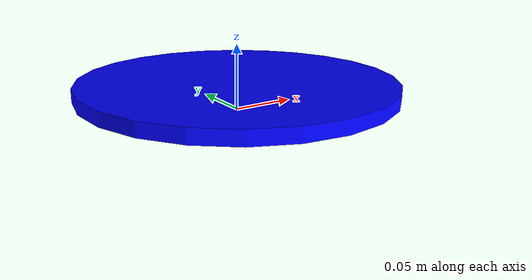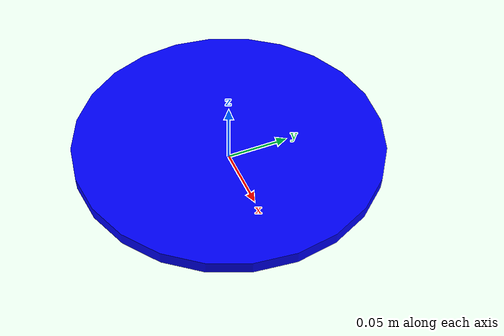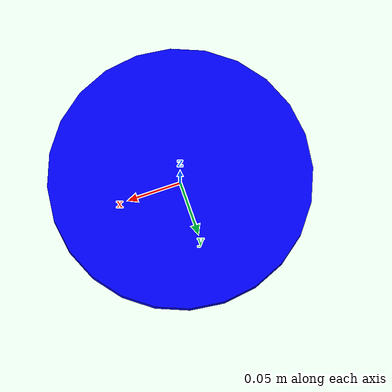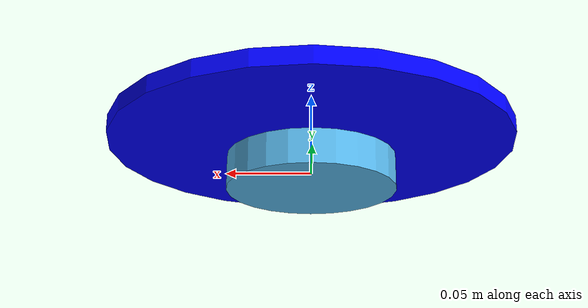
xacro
<?xml version="1.0"?>
<robot xmlns:xacro="http://www.ros.org/wiki/xacro" name="table">

<xacro:property name="rho" value="10.0"/>
<xacro:property name="r" value="0.12"/>
<xacro:property name="h" value="0.01"/>
<xacro:property name="m" value="${rho * pi * r * r * h}"/>
<xacro:property name="I1" value="${m * r * r / 4 + m * h * h / 12}"/>
<xacro:property name="I2" value="${m * r * r / 2}"/>

<gazebo>
    <plugin name="gazebo_ros_control" filename="libgazebo_ros_control.so">
        <robotNamespace>/table</robotNamespace>
    </plugin>
</gazebo>

<link name="world"/>

<link name="motor_link">
    <visual>
        <geometry>
            <cylinder radius="0.05" length="0.02"/>
        </geometry>
    </visual>

    <collision>
        <geometry>
            <cylinder radius="0.05" length="0.02"/>
        </geometry>
    </collision>

    <inertial>
        <origin xyz="0 0 0" rpy="0 0 0"/>
        <mass value="1"/>
        <inertia ixx="1"  ixy="0"  ixz="0" iyy="1" iyz="0" izz="1" />
    </inertial>
</link>

<link name="table_link">
    <inertial>
        <origin xyz="0 0 0" rpy="0 0 0"/>
        <mass value="1"/>
        <inertia ixx="${I1}"  ixy="0"  ixz="0" iyy="${I1}" iyz="0" izz="${I2}" />
    </inertial>
    <visual>
        <origin xyz="0 0 0" rpy="0 0 0" />
        <geometry>
            <cylinder radius="${r}" length="${h}"/>
        </geometry>
        <material name="blue">
            <color rgba="0.0 0.0 1.0 1.0"/>
        </material>
    </visual>
    <collision>
        <geometry>
            <cylinder radius="${r}" length="${h}"/>
        </geometry>
    </collision>
</link>

<joint name="joint1" type="continuous">
    <parent link="motor_link"/>
    <child link="table_link"/>
    <axis xyz="0 0 1" />
    <origin xyz="0 0 0.02" rpy="0 0 0" />
</joint>

<joint name="fixed" type="fixed">
    <parent link="world"/>
    <child link="motor_link"/>
</joint>

<transmission name="tran1">
    <type>transmission_interface/SimpleTransmission</type>
    <joint name="joint1">
        <hardwareInterface>hardware_interface/VelocityJointInterface</hardwareInterface>
    </joint>
    <actuator name="motor1">
        <hardwareInterface>hardware_interface/VelocityJointInterface</hardwareInterface>
        <mechanicalReduction>1</mechanicalReduction>
    </actuator>
</transmission>

</robot>
